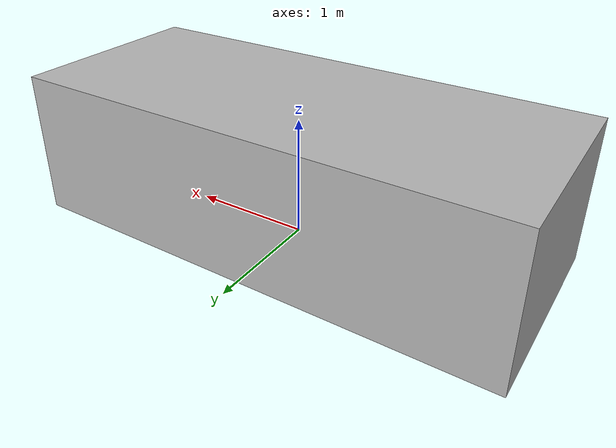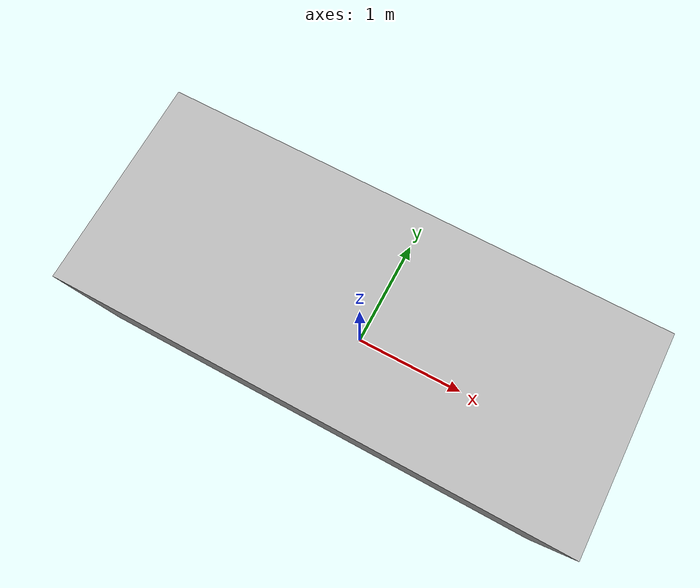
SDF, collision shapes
<?xml version="1.0"?>
<sdf version="1.6">
    <model name="car_polo">
        <enable_wind>1</enable_wind>
        <static>0</static>

        <link name="base_link">
            <inertial>
                <pose>0 0 0.6 0 0 0</pose>
                <mass>1130</mass>
                <inertia>
                    <ixx>463.8</ixx>
                    <ixy>0</ixy>
                    <ixz>0</ixz>
                    <iyy>1742.6</iyy>
                    <iyz>0</iyz>
                    <izz>1810.3</izz>
                </inertia>
            </inertial>

            <collision name="base_link_collision">
                <pose>0 0 0.6 0 0 0</pose>
                <geometry>
                    <box>
                        <size>4.05 1.68 1.2</size>
                    </box>
                </geometry>
                <surface>
                    <friction>
                        <ode>
                            <mu>0.8</mu>
                            <mu2>0.8</mu2>
                        </ode>
                    </friction>
                </surface>
            </collision>

            <visual name="base_link_visual">
                <pose>0 0 0 0 0 1.5707963267948966</pose>
                <geometry>
                    <mesh>
                        <uri>model://car_polo/meshes/Polo.dae</uri>
                        <scale>0.0254 0.0254 0.0254</scale>
                    </mesh>
                </geometry>
            </visual>

            <visual name="aruco_marker_visual">
                <pose>-1.8 0.6 1.03 0 0 -1.5707963267948966</pose>
                <geometry>
                    <mesh>
                        <uri>model://car_polo/meshes/LandingTargetTemplate.dae</uri>
                        <scale>1.2 1.2 1.2</scale>
                    </mesh>
                </geometry>
                <cast_shadows>false</cast_shadows>
            </visual>
        </link>

        <!-- ============================================================
             WHEELS
             ============================================================ -->
        <link name="front_left_wheel">
            <pose>1.275 0.715 0.316 0 0 0</pose>
            <inertial>
                <mass>15</mass>
                <inertia>
                    <ixx>0.4246</ixx>
                    <ixy>0</ixy>
                    <ixz>0</ixz>
                    <iyy>0.4246</iyy>
                    <iyz>0</iyz>
                    <izz>0.749</izz>
                </inertia>
            </inertial>
            <collision name="collision">
                <pose>0 0 0 -1.5707963267948966 0 0</pose>
                <geometry>
                    <cylinder>
                        <length>0.2</length>
                        <radius>0.316</radius>
                    </cylinder>
                </geometry>
                <surface>
                    <friction>
                        <ode>
                            <mu>0.5</mu>
                            <mu2>1</mu2>
                            <slip1>0.00062</slip1>
                            <slip2>0</slip2>
                            <fdir1>0 0 1</fdir1>
                        </ode>
                    </friction>
                </surface>
            </collision>
        </link>
        <joint name="front_left_wheel_joint" type="revolute">
            <parent>base_link</parent>
            <child>front_left_wheel</child>
            <axis>
                <xyz>0 1 0</xyz>
                <limit>
                    <lower>-1.79769e+308</lower>
                    <upper>+1.79769e+308</upper>
                </limit>
            </axis>
        </joint>

        <link name="front_right_wheel">
            <pose>1.275 -0.715 0.316 0 0 0</pose>
            <inertial>
                <mass>15</mass>
                <inertia>
                    <ixx>0.4246</ixx>
                    <ixy>0</ixy>
                    <ixz>0</ixz>
                    <iyy>0.4246</iyy>
                    <iyz>0</iyz>
                    <izz>0.749</izz>
                </inertia>
            </inertial>
            <collision name="collision">
                <pose>0 0 0 -1.5707963267948966 0 0</pose>
                <geometry>
                    <cylinder>
                        <length>0.2</length>
                        <radius>0.316</radius>
                    </cylinder>
                </geometry>
                <surface>
                    <friction>
                        <ode>
                            <mu>0.5</mu>
                            <mu2>1</mu2>
                            <slip1>0.00062</slip1>
                            <slip2>0</slip2>
                            <fdir1>0 0 1</fdir1>
                        </ode>
                    </friction>
                </surface>
            </collision>
        </link>
        <joint name="front_right_wheel_joint" type="revolute">
            <parent>base_link</parent>
            <child>front_right_wheel</child>
            <axis>
                <xyz>0 1 0</xyz>
                <limit>
                    <lower>-1.79769e+308</lower>
                    <upper>+1.79769e+308</upper>
                </limit>
            </axis>
        </joint>

        <link name="rear_left_wheel">
            <pose>-1.275 0.715 0.316 0 0 0</pose>
            <inertial>
                <mass>15</mass>
                <inertia>
                    <ixx>0.4246</ixx>
                    <ixy>0</ixy>
                    <ixz>0</ixz>
                    <iyy>0.4246</iyy>
                    <iyz>0</iyz>
                    <izz>0.749</izz>
                </inertia>
            </inertial>
            <collision name="collision">
                <pose>0 0 0 -1.5707963267948966 0 0</pose>
                <geometry>
                    <cylinder>
                        <length>0.2</length>
                        <radius>0.316</radius>
                    </cylinder>
                </geometry>
                <surface>
                    <friction>
                        <ode>
                            <mu>0.5</mu>
                            <mu2>1</mu2>
                            <slip1>0.00062</slip1>
                            <slip2>0</slip2>
                            <fdir1>0 0 1</fdir1>
                        </ode>
                    </friction>
                </surface>
            </collision>
        </link>
        <joint name="rear_left_wheel_joint" type="revolute">
            <parent>base_link</parent>
            <child>rear_left_wheel</child>
            <axis>
                <xyz>0 1 0</xyz>
                <limit>
                    <lower>-1.79769e+308</lower>
                    <upper>+1.79769e+308</upper>
                </limit>
            </axis>
        </joint>

        <link name="rear_right_wheel">
            <pose>-1.275 -0.715 0.316 0 0 0</pose>
            <inertial>
                <mass>15</mass>
                <inertia>
                    <ixx>0.4246</ixx>
                    <ixy>0</ixy>
                    <ixz>0</ixz>
                    <iyy>0.4246</iyy>
                    <iyz>0</iyz>
                    <izz>0.749</izz>
                </inertia>
            </inertial>
            <collision name="collision">
                <pose>0 0 0 -1.5707963267948966 0 0</pose>
                <geometry>
                    <cylinder>
                        <length>0.2</length>
                        <radius>0.316</radius>
                    </cylinder>
                </geometry>
                <surface>
                    <friction>
                        <ode>
                            <mu>0.5</mu>
                            <mu2>1</mu2>
                            <slip1>0.00062</slip1>
                            <slip2>0</slip2>
                            <fdir1>0 0 1</fdir1>
                        </ode>
                    </friction>
                </surface>
            </collision>
        </link>
        <joint name="rear_right_wheel_joint" type="revolute">
            <parent>base_link</parent>
            <child>rear_right_wheel</child>
            <axis>
                <xyz>0 1 0</xyz>
                <limit>
                    <lower>-1.79769e+308</lower>
                    <upper>+1.79769e+308</upper>
                </limit>
            </axis>
        </joint>

        <plugin
            filename="gz-sim-diff-drive-system"
            name="gz::sim::systems::DiffDrive">
            <left_joint>front_left_wheel_joint</left_joint>
            <left_joint>rear_left_wheel_joint</left_joint>
            <right_joint>front_right_wheel_joint</right_joint>
            <right_joint>rear_right_wheel_joint</right_joint>
            <wheel_separation>1.43</wheel_separation>
            <wheel_radius>0.316</wheel_radius>
            <odom_publish_frequency>20</odom_publish_frequency>
            <topic>cmd_vel</topic>
        </plugin>
        <plugin
            name="gz::sim::systems::OdometryPublisher"
            filename="gz-sim-odometry-publisher-system">
            <topic>/model/car_polo/odometry</topic>
            <odom_frame_id>car_polo/odom</odom_frame_id>
            <child_frame_id>car_polo/base_link</child_frame_id>
            <world_frame>true</world_frame>
            <publish_odom>true</publish_odom>
        </plugin>
    </model>
</sdf>
